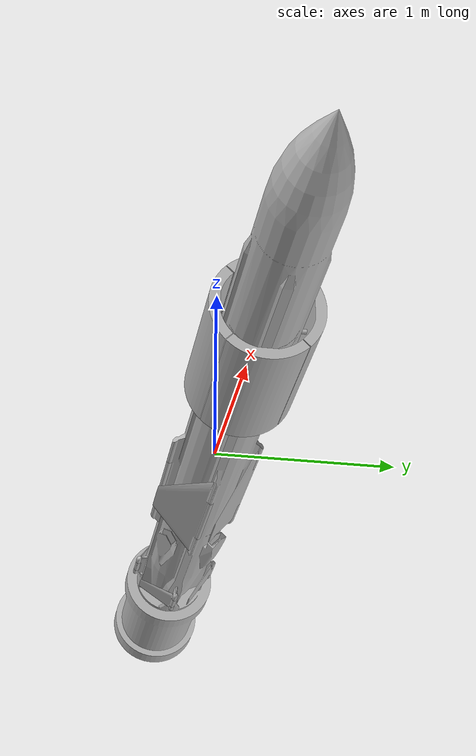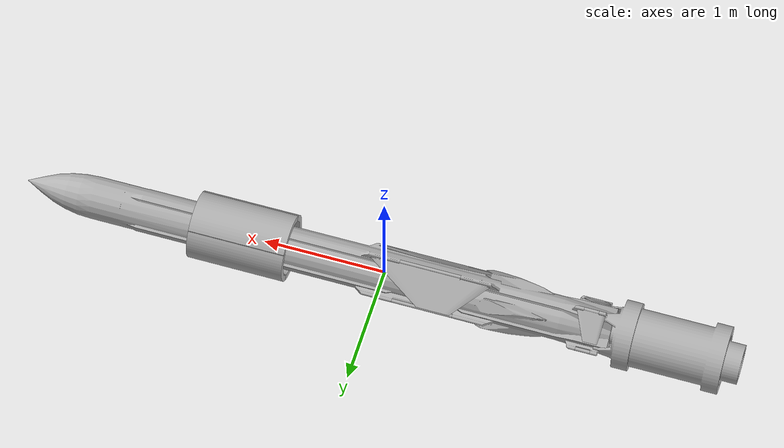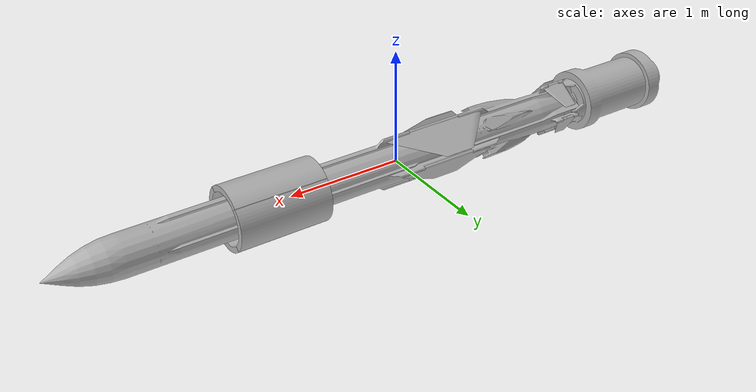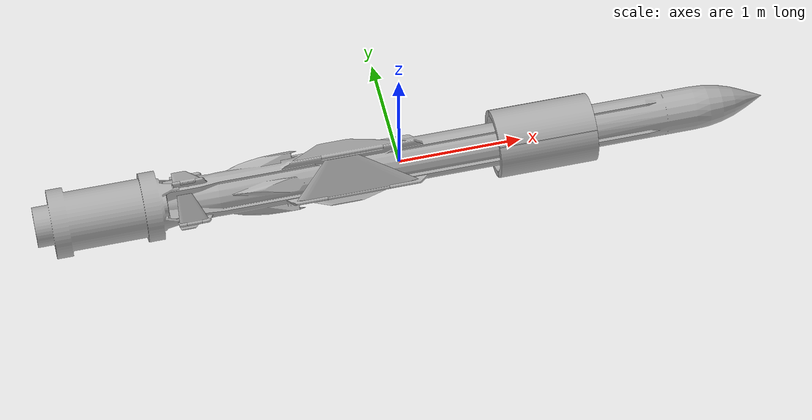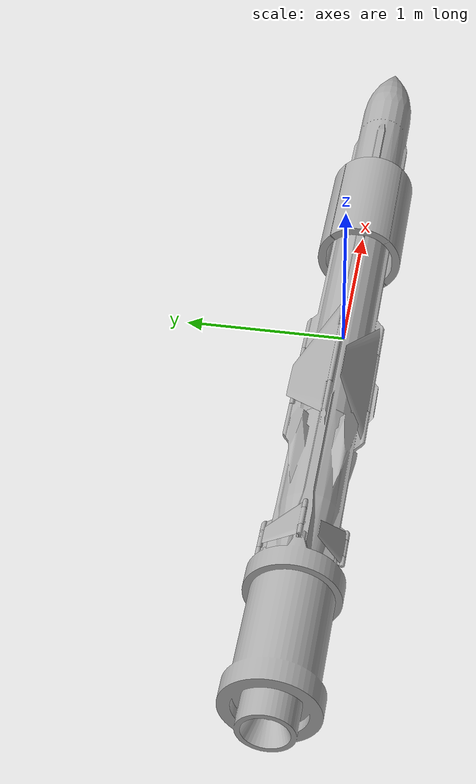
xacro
<?xml version="1.0" ?>
<robot name="missile" xmlns:xacro="http://www.ros.org/wiki/xacro">

<xacro:property name="use_booster" value="true"/>
<xacro:property name="use_holder" value="true"/>
<xacro:property name="foldable" value="true"/>
<xacro:property name="deflection" value="true"/>

<xacro:include filename="$(find missile_description)/urdf/materials.xacro" />
<xacro:include filename="$(find missile_description)/urdf/missile.trans" />
<xacro:include filename="$(find missile_description)/urdf/missile.gazebo" />
<link name="base_link">
  <inertial>
    <origin xyz="-4.594227220877655e-12 -2.0985300452893146e-16 -5.339187416809628e-16" rpy="0 0 0"/>
    <mass value="562.7679612503737"/>
    <inertia ixx="12.078708" iyy="817.09871" izz="817.09871" ixy="-0.0" iyz="0.0" ixz="0.0"/>
  </inertial>
  <visual>
    <origin xyz="0 0 0" rpy="0 0 0"/>
    <geometry>
      <mesh filename="package://missile_description/meshes/base_link.stl" scale="0.001 0.001 0.001"/>
    </geometry>
    <material name="silver"/>
  </visual>
  <collision>
    <origin xyz="0 0 0" rpy="0 0 0"/>
    <geometry>
      <mesh filename="package://missile_description/meshes/base_link.stl" scale="0.001 0.001 0.001"/>
    </geometry>
  </collision>
</link>

<link name="FinHolder_1">
  <inertial>
    <origin xyz="0.011989970177489262 3.4957888681917224e-06 0.035203704048823864" rpy="0 0 0"/>
    <mass value="0.6999999481439694"/>
    <inertia ixx="0.00025" iyy="0.004747" izz="0.00455" ixy="-0.0" iyz="-0.0" ixz="4.3e-05"/>
  </inertial>
  <visual>
    <origin xyz="1.700844 0.0 -0.18" rpy="0 0 0"/>
    <geometry>
      <mesh filename="package://missile_description/meshes/FinHolder_1.stl" scale="0.001 0.001 0.001"/>
    </geometry>
    <material name="silver"/>
  </visual>
  <collision>
    <origin xyz="1.700844 0.0 -0.18" rpy="0 0 0"/>
    <geometry>
      <mesh filename="package://missile_description/meshes/FinHolder_1.stl" scale="0.001 0.001 0.001"/>
    </geometry>
  </collision>
</link>

<link name="FinHolder_4">
  <inertial>
    <origin xyz="0.011989970177489262 -0.035203704048823864 3.4957888733822696e-06" rpy="0 0 0"/>
    <mass value="0.6999999481439694"/>
    <inertia ixx="0.00025" iyy="0.00455" izz="0.004747" ixy="-4.3e-05" iyz="0.0" ixz="-0.0"/>
  </inertial>
  <visual>
    <origin xyz="1.700844 0.18 -0.0" rpy="0 0 0"/>
    <geometry>
      <mesh filename="package://missile_description/meshes/FinHolder_4.stl" scale="0.001 0.001 0.001"/>
    </geometry>
    <material name="silver"/>
  </visual>
  <collision>
    <origin xyz="1.700844 0.18 -0.0" rpy="0 0 0"/>
    <geometry>
      <mesh filename="package://missile_description/meshes/FinHolder_4.stl" scale="0.001 0.001 0.001"/>
    </geometry>
  </collision>
</link>

<link name="FinHolder_3">
  <inertial>
    <origin xyz="0.011989970177489262 -3.4957888733466307e-06 -0.03520370404881856" rpy="0 0 0"/>
    <mass value="0.6999999481439694"/>
    <inertia ixx="0.00025" iyy="0.004747" izz="0.00455" ixy="0.0" iyz="-0.0" ixz="-4.3e-05"/>
  </inertial>
  <visual>
    <origin xyz="1.700844 0.0 0.18" rpy="0 0 0"/>
    <geometry>
      <mesh filename="package://missile_description/meshes/FinHolder_3.stl" scale="0.001 0.001 0.001"/>
    </geometry>
    <material name="silver"/>
  </visual>
  <collision>
    <origin xyz="1.700844 0.0 0.18" rpy="0 0 0"/>
    <geometry>
      <mesh filename="package://missile_description/meshes/FinHolder_3.stl" scale="0.001 0.001 0.001"/>
    </geometry>
  </collision>
</link>

<link name="FinHolder_2">
  <inertial>
    <origin xyz="0.011989970177489262 0.035203704048818646 -3.4957888682093746e-06" rpy="0 0 0"/>
    <mass value="0.6999999481439694"/>
    <inertia ixx="0.00025" iyy="0.00455" izz="0.004747" ixy="4.3e-05" iyz="0.0" ixz="0.0"/>
  </inertial>
  <visual>
    <origin xyz="1.700844 -0.18 -0.0" rpy="0 0 0"/>
    <geometry>
      <mesh filename="package://missile_description/meshes/FinHolder_2.stl" scale="0.001 0.001 0.001"/>
    </geometry>
    <material name="silver"/>
  </visual>
  <collision>
    <origin xyz="1.700844 -0.18 -0.0" rpy="0 0 0"/>
    <geometry>
      <mesh filename="package://missile_description/meshes/FinHolder_2.stl" scale="0.001 0.001 0.001"/>
    </geometry>
  </collision>
</link>

<link name="Wing1_1">
  <inertial>
    <origin xyz="-0.03120806190193287 0.08454510203692361 -0.05490381315658294" rpy="0 0 0"/>
    <mass value="9.299979574219194"/>
    <inertia ixx="0.055746" iyy="0.406222" izz="0.428657" ixy="0.01462" iyz="0.025196" ixz="-0.009494"/>
  </inertial>
  <visual>
    <origin xyz="0.380856 0.0 -0.231018" rpy="0 0 0"/>
    <geometry>
      <mesh filename="package://missile_description/meshes/Wing1_1.stl" scale="0.001 0.001 0.001"/>
    </geometry>
    <material name="silver"/>
  </visual>
  <collision>
    <origin xyz="0.380856 0.0 -0.231018" rpy="0 0 0"/>
    <geometry>
      <mesh filename="package://missile_description/meshes/Wing1_1.stl" scale="0.001 0.001 0.001"/>
    </geometry>
  </collision>
</link>

<link name="Booster_1">
  <inertial>
    <origin xyz="-0.5305587019886722 3.258343625363644e-09 1.9538431618585255e-09" rpy="0 0 0"/>
    <mass value="120.00001114591107"/>
    <inertia ixx="5.768641" iyy="16.618567" izz="16.618567" ixy="-0.0" iyz="0.0" ixz="-0.0"/>
  </inertial>
  <visual>
    <origin xyz="1.880856 0.0 -0.0" rpy="0 0 0"/>
    <geometry>
      <mesh filename="package://missile_description/meshes/Booster_1.stl" scale="0.001 0.001 0.001"/>
    </geometry>
    <material name="silver"/>
  </visual>
  <collision>
    <origin xyz="1.880856 0.0 -0.0" rpy="0 0 0"/>
    <geometry>
      <mesh filename="package://missile_description/meshes/Booster_1.stl" scale="0.001 0.001 0.001"/>
    </geometry>
  </collision>
</link>

<link name="Wing1_2">
  <inertial>
    <origin xyz="-0.031208061901932704 -0.054359174121570264 -0.08370643146897805" rpy="0 0 0"/>
    <mass value="9.299979574219194"/>
    <inertia ixx="0.055746" iyy="0.428657" izz="0.406222" ixy="-0.009494" iyz="-0.025196" ixz="-0.01462"/>
  </inertial>
  <visual>
    <origin xyz="0.380856 -0.231018 -0.0" rpy="0 0 0"/>
    <geometry>
      <mesh filename="package://missile_description/meshes/Wing1_2.stl" scale="0.001 0.001 0.001"/>
    </geometry>
    <material name="silver"/>
  </visual>
  <collision>
    <origin xyz="0.380856 -0.231018 -0.0" rpy="0 0 0"/>
    <geometry>
      <mesh filename="package://missile_description/meshes/Wing1_2.stl" scale="0.001 0.001 0.001"/>
    </geometry>
  </collision>
</link>

<link name="Wing1_3">
  <inertial>
    <origin xyz="-0.031208061901932538 -0.08370643146898026 0.054359174121570125" rpy="0 0 0"/>
    <mass value="9.299979574219194"/>
    <inertia ixx="0.055746" iyy="0.406222" izz="0.428657" ixy="-0.01462" iyz="0.025196" ixz="0.009494"/>
  </inertial>
  <visual>
    <origin xyz="0.380856 0.0 0.231018" rpy="0 0 0"/>
    <geometry>
      <mesh filename="package://missile_description/meshes/Wing1_3.stl" scale="0.001 0.001 0.001"/>
    </geometry>
    <material name="silver"/>
  </visual>
  <collision>
    <origin xyz="0.380856 0.0 0.231018" rpy="0 0 0"/>
    <geometry>
      <mesh filename="package://missile_description/meshes/Wing1_3.stl" scale="0.001 0.001 0.001"/>
    </geometry>
  </collision>
</link>

<link name="Wing1_4">
  <inertial>
    <origin xyz="-0.031208061901932815 0.05435917412156782 0.08370643146898026" rpy="0 0 0"/>
    <mass value="9.299979574219194"/>
    <inertia ixx="0.055746" iyy="0.428657" izz="0.406222" ixy="0.009494" iyz="-0.025196" ixz="0.01462"/>
  </inertial>
  <visual>
    <origin xyz="0.380856 0.231018 -0.0" rpy="0 0 0"/>
    <geometry>
      <mesh filename="package://missile_description/meshes/Wing1_4.stl" scale="0.001 0.001 0.001"/>
    </geometry>
    <material name="silver"/>
  </visual>
  <collision>
    <origin xyz="0.380856 0.231018 -0.0" rpy="0 0 0"/>
    <geometry>
      <mesh filename="package://missile_description/meshes/Wing1_4.stl" scale="0.001 0.001 0.001"/>
    </geometry>
  </collision>
</link>

<link name="Holder_1">
  <inertial>
    <origin xyz="-0.19999995584291042 5.199231923711502e-15 0.03568356991533719" rpy="0 0 0"/>
    <mass value="13.50000107858645"/>
    <inertia ixx="0.184494" iyy="0.784777" izz="0.944426" ixy="-0.0" iyz="0.0" ixz="-0.0"/>
  </inertial>
  <visual>
    <origin xyz="-1.375615 -0.0 -0.187374" rpy="0 0 0"/>
    <geometry>
      <mesh filename="package://missile_description/meshes/Holder_1.stl" scale="0.001 0.001 0.001"/>
    </geometry>
    <material name="silver"/>
  </visual>
  <collision>
    <origin xyz="-1.375615 -0.0 -0.187374" rpy="0 0 0"/>
    <geometry>
      <mesh filename="package://missile_description/meshes/Holder_1.stl" scale="0.001 0.001 0.001"/>
    </geometry>
  </collision>
</link>

<link name="Holder_2">
  <inertial>
    <origin xyz="-0.19999995584291042 -0.03568356991533719 5.1991695340190614e-15" rpy="0 0 0"/>
    <mass value="13.50000107858645"/>
    <inertia ixx="0.184494" iyy="0.944426" izz="0.784777" ixy="0.0" iyz="-0.0" ixz="-0.0"/>
  </inertial>
  <visual>
    <origin xyz="-1.375615 0.187374 -0.0" rpy="0 0 0"/>
    <geometry>
      <mesh filename="package://missile_description/meshes/Holder_2.stl" scale="0.001 0.001 0.001"/>
    </geometry>
    <material name="silver"/>
  </visual>
  <collision>
    <origin xyz="-1.375615 0.187374 -0.0" rpy="0 0 0"/>
    <geometry>
      <mesh filename="package://missile_description/meshes/Holder_2.stl" scale="0.001 0.001 0.001"/>
    </geometry>
  </collision>
</link>

<link name="Holder_3">
  <inertial>
    <origin xyz="-0.19999995584291042 -5.2364271894994325e-15 -0.03568356991533719" rpy="0 0 0"/>
    <mass value="13.50000107858645"/>
    <inertia ixx="0.184494" iyy="0.784777" izz="0.944426" ixy="0.0" iyz="0.0" ixz="0.0"/>
  </inertial>
  <visual>
    <origin xyz="-1.375615 0.0 0.187374" rpy="0 0 0"/>
    <geometry>
      <mesh filename="package://missile_description/meshes/Holder_3.stl" scale="0.001 0.001 0.001"/>
    </geometry>
    <material name="silver"/>
  </visual>
  <collision>
    <origin xyz="-1.375615 0.0 0.187374" rpy="0 0 0"/>
    <geometry>
      <mesh filename="package://missile_description/meshes/Holder_3.stl" scale="0.001 0.001 0.001"/>
    </geometry>
  </collision>
</link>

<link name="Holder_4">
  <inertial>
    <origin xyz="-0.19999995584291042 0.03568356991533719 -5.236489570721544e-15" rpy="0 0 0"/>
    <mass value="13.50000107858645"/>
    <inertia ixx="0.184494" iyy="0.944426" izz="0.784777" ixy="-0.0" iyz="-0.0" ixz="0.0"/>
  </inertial>
  <visual>
    <origin xyz="-1.375615 -0.187374 0.0" rpy="0 0 0"/>
    <geometry>
      <mesh filename="package://missile_description/meshes/Holder_4.stl" scale="0.001 0.001 0.001"/>
    </geometry>
    <material name="silver"/>
  </visual>
  <collision>
    <origin xyz="-1.375615 -0.187374 0.0" rpy="0 0 0"/>
    <geometry>
      <mesh filename="package://missile_description/meshes/Holder_4.stl" scale="0.001 0.001 0.001"/>
    </geometry>
  </collision>
</link>

<link name="Fin_1">
  <inertial>
    <origin xyz="-0.014318251120807535 0.07281995652528409 -0.04728983270383125" rpy="0 0 0"/>
    <mass value="1.500000007859579"/>
    <inertia ixx="0.006929" iyy="0.005866" izz="0.008658" ixy="0.001066" iyz="0.003135" ixz="-0.000692"/>
  </inertial>
  <visual>
    <origin xyz="1.700844 0.0 -0.235" rpy="0 0 0"/>
    <geometry>
      <mesh filename="package://missile_description/meshes/Fin_1.stl" scale="0.001 0.001 0.001"/>
    </geometry>
    <material name="silver"/>
  </visual>
  <collision>
    <origin xyz="1.700844 0.0 -0.235" rpy="0 0 0"/>
    <geometry>
      <mesh filename="package://missile_description/meshes/Fin_1.stl" scale="0.001 0.001 0.001"/>
    </geometry>
  </collision>
</link>

<link name="Fin_2">
  <inertial>
    <origin xyz="-0.01431825112080709 -0.047289832703836465 -0.07282025045367582" rpy="0 0 0"/>
    <mass value="1.500000007859579"/>
    <inertia ixx="0.006929" iyy="0.008658" izz="0.005866" ixy="-0.000692" iyz="-0.003135" ixz="-0.001066"/>
  </inertial>
  <visual>
    <origin xyz="1.700844 -0.235 1.7e-05" rpy="0 0 0"/>
    <geometry>
      <mesh filename="package://missile_description/meshes/Fin_2.stl" scale="0.001 0.001 0.001"/>
    </geometry>
    <material name="silver"/>
  </visual>
  <collision>
    <origin xyz="1.700844 -0.235 1.7e-05" rpy="0 0 0"/>
    <geometry>
      <mesh filename="package://missile_description/meshes/Fin_2.stl" scale="0.001 0.001 0.001"/>
    </geometry>
  </collision>
</link>

<link name="Fin_3">
  <inertial>
    <origin xyz="-0.01431825112080709 -0.07281995652528925 0.04728983270383638" rpy="0 0 0"/>
    <mass value="1.500000007859579"/>
    <inertia ixx="0.006929" iyy="0.005866" izz="0.008658" ixy="-0.001066" iyz="0.003135" ixz="0.000692"/>
  </inertial>
  <visual>
    <origin xyz="1.700844 0.0 0.235" rpy="0 0 0"/>
    <geometry>
      <mesh filename="package://missile_description/meshes/Fin_3.stl" scale="0.001 0.001 0.001"/>
    </geometry>
    <material name="silver"/>
  </visual>
  <collision>
    <origin xyz="1.700844 0.0 0.235" rpy="0 0 0"/>
    <geometry>
      <mesh filename="package://missile_description/meshes/Fin_3.stl" scale="0.001 0.001 0.001"/>
    </geometry>
  </collision>
</link>

<link name="Fin_4">
  <inertial>
    <origin xyz="-0.014318251120807535 0.047289832703831275 0.07281995652528914" rpy="0 0 0"/>
    <mass value="1.500000007859579"/>
    <inertia ixx="0.006929" iyy="0.008658" izz="0.005866" ixy="0.000692" iyz="-0.003135" ixz="0.001066"/>
  </inertial>
  <visual>
    <origin xyz="1.700844 0.235 -0.0" rpy="0 0 0"/>
    <geometry>
      <mesh filename="package://missile_description/meshes/Fin_4.stl" scale="0.001 0.001 0.001"/>
    </geometry>
    <material name="silver"/>
  </visual>
  <collision>
    <origin xyz="1.700844 0.235 -0.0" rpy="0 0 0"/>
    <geometry>
      <mesh filename="package://missile_description/meshes/Fin_4.stl" scale="0.001 0.001 0.001"/>
    </geometry>
  </collision>
</link>

<joint name="fins_rev1" type="revolute">
  <origin xyz="-1.700844 0.0 0.18" rpy="0 0 0"/>
  <parent link="base_link"/>
  <child link="FinHolder_1"/>
  <axis xyz="-0.0 -0.0 1.0"/>
  <limit upper="0.349066" lower="-0.349066" effort="100" velocity="100"/>
</joint>

<joint name="fins_rev4" type="revolute">
  <origin xyz="-1.700844 -0.18 0.0" rpy="0 0 0"/>
  <parent link="base_link"/>
  <child link="FinHolder_4"/>
  <axis xyz="-0.0 -1.0 -0.0"/>
  <limit upper="0.349066" lower="-0.349066" effort="100" velocity="100"/>
</joint>

<joint name="fins_rev3" type="revolute">
  <origin xyz="-1.700844 0.0 -0.18" rpy="0 0 0"/>
  <parent link="base_link"/>
  <child link="FinHolder_3"/>
  <axis xyz="-0.0 0.0 -1.0"/>
  <limit upper="0.349066" lower="-0.349066" effort="100" velocity="100"/>
</joint>

<joint name="fins_rev2" type="revolute">
  <origin xyz="-1.700844 0.18 0.0" rpy="0 0 0"/>
  <parent link="base_link"/>
  <child link="FinHolder_2"/>
  <axis xyz="-0.0 1.0 0.0"/>
  <limit upper="0.349066" lower="-0.349066" effort="100" velocity="100"/>
</joint>

<joint name="wings_fold1" type="revolute">
  <origin xyz="-0.380856 0.0 0.231018" rpy="0 0 0"/>
  <parent link="base_link"/>
  <child link="Wing1_1"/>
  <axis xyz="1.0 -0.0 -0.0"/>
  <limit upper="2.146755" lower="0.0" effort="100" velocity="100"/>
</joint>

<joint name="booster_fixing" type="fixed">
  <origin xyz="-1.880856 0.0 0.0" rpy="0 0 0"/>
  <parent link="base_link"/>
  <child link="Booster_1"/>
</joint>

<joint name="wings_fold2" type="revolute">
  <origin xyz="-0.380856 0.231018 0.0" rpy="0 0 0"/>
  <parent link="base_link"/>
  <child link="Wing1_2"/>
  <axis xyz="1.0 0.0 -0.0"/>
  <limit upper="2.146755" lower="0.0" effort="100" velocity="100"/>
</joint>

<joint name="wings_fold3" type="revolute">
  <origin xyz="-0.380856 0.0 -0.231018" rpy="0 0 0"/>
  <parent link="base_link"/>
  <child link="Wing1_3"/>
  <axis xyz="1.0 0.0 -0.0"/>
  <limit upper="2.146755" lower="0.0" effort="100" velocity="100"/>
</joint>

<joint name="wings_fold4" type="revolute">
  <origin xyz="-0.380856 -0.231018 0.0" rpy="0 0 0"/>
  <parent link="base_link"/>
  <child link="Wing1_4"/>
  <axis xyz="1.0 0.0 -0.0"/>
  <limit upper="2.146755" lower="0.0" effort="100" velocity="100"/>
</joint>

<joint name="HolderJoint1" type="fixed">
  <origin xyz="1.375615 0.0 0.187374" rpy="0 0 0"/>
  <parent link="base_link"/>
  <child link="Holder_1"/>
</joint>

<joint name="HolderJoint2" type="fixed">
  <origin xyz="1.375615 -0.187374 0.0" rpy="0 0 0"/>
  <parent link="base_link"/>
  <child link="Holder_2"/>
</joint>

<joint name="HolderJoint3" type="fixed">
  <origin xyz="1.375615 0.0 -0.187374" rpy="0 0 0"/>
  <parent link="base_link"/>
  <child link="Holder_3"/>
</joint>

<joint name="HolderJoint4" type="fixed">
  <origin xyz="1.375615 0.187374 0.0" rpy="0 0 0"/>
  <parent link="base_link"/>
  <child link="Holder_4"/>
</joint>

<joint name="fin_fold1" type="revolute">
  <origin xyz="0.0 0.0 0.055" rpy="0 0 0"/>
  <parent link="FinHolder_1"/>
  <child link="Fin_1"/>
  <axis xyz="1.0 -0.0 0.0"/>
  <limit upper="2.146755" lower="0.0" effort="100" velocity="100"/>
</joint>

<joint name="fin_fold2" type="revolute">
  <origin xyz="0.0 0.055 -1.7e-05" rpy="0 0 0"/>
  <parent link="FinHolder_2"/>
  <child link="Fin_2"/>
  <axis xyz="1.0 0.0 -0.0"/>
  <limit upper="2.146755" lower="0.0" effort="100" velocity="100"/>
</joint>

<joint name="fin_fold3" type="revolute">
  <origin xyz="0.0 0.0 -0.055" rpy="0 0 0"/>
  <parent link="FinHolder_3"/>
  <child link="Fin_3"/>
  <axis xyz="1.0 0.0 -0.0"/>
  <limit upper="2.146755" lower="0.0" effort="100" velocity="100"/>
</joint>

<joint name="fin_fold4" type="revolute">
  <origin xyz="0.0 -0.055 0.0" rpy="0 0 0"/>
  <parent link="FinHolder_4"/>
  <child link="Fin_4"/>
  <axis xyz="1.0 -0.0 -0.0"/>
  <limit upper="2.146755" lower="0.0" effort="100" velocity="100"/>
</joint>

</robot>

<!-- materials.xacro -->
<robot name="missile" xmlns:xacro="http://www.ros.org/wiki/xacro" >

<material name="silver">
  <color rgba="0.700 0.700 0.700 1.000"/>
</material>

</robot>
